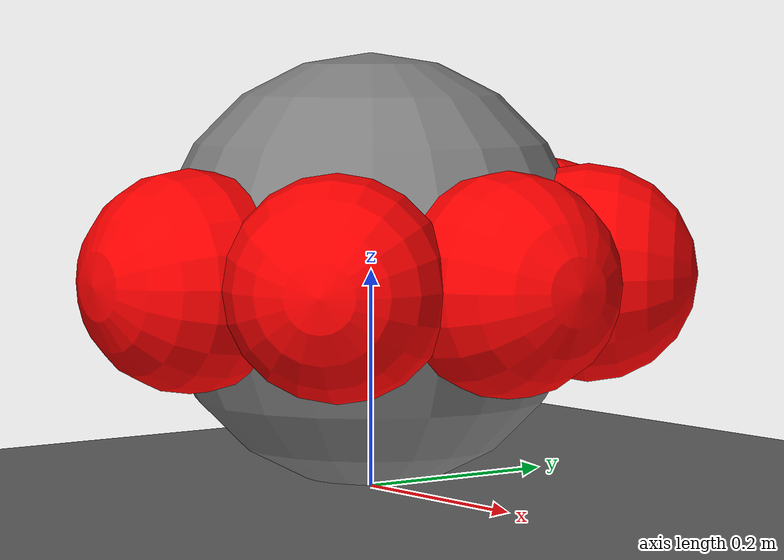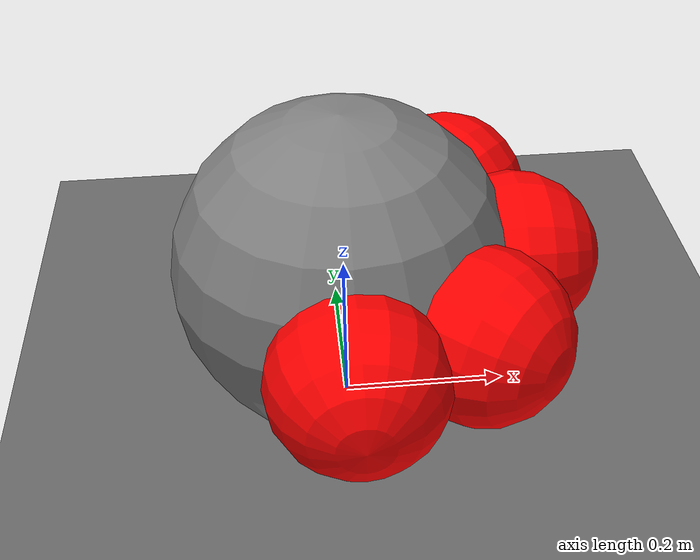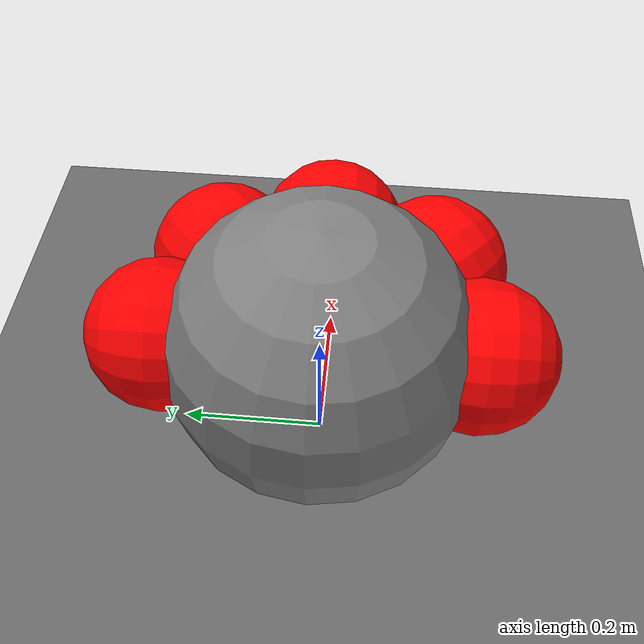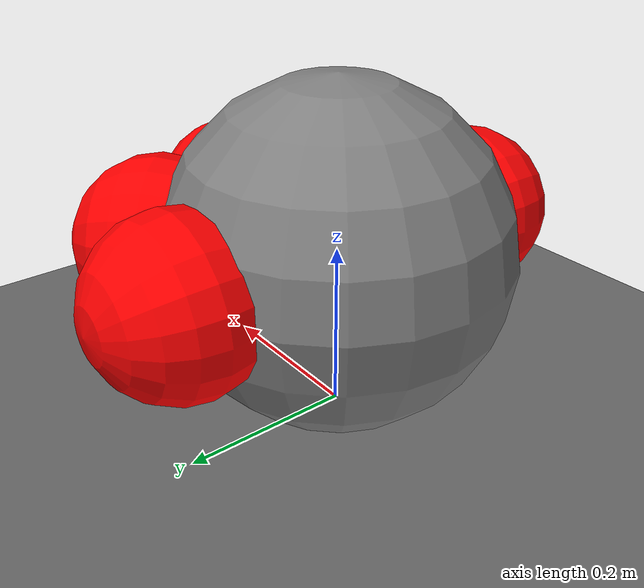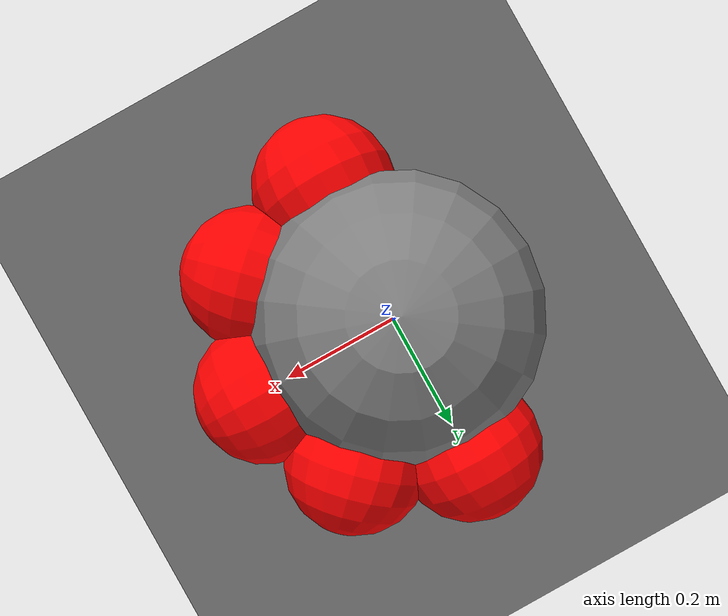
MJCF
<mujoco model="discrete_fish">
  <compiler angle="degree" coordinate="local" inertiafromgeom="true"/>
  <option timestep="0.01" iterations="4" />
  <custom>
    <!-- brax custom params -->
    <numeric data="0.0 0.0 0.0 " name="init_qpos"/>
    <numeric data="1000" name="constraint_limit_stiffness"/>
    <numeric data="4000" name="constraint_stiffness"/>
    <numeric data="10" name="constraint_ang_damping"/>
    <numeric data="20" name="constraint_vel_damping"/>
    <numeric data="0.5" name="joint_scale_pos"/>
    <numeric data="0.2" name="joint_scale_ang"/>
    <numeric data="0.0" name="ang_damping"/>
    <numeric data="1" name="spring_mass_scale"/>
    <numeric data="1" name="spring_inertia_scale"/>
    <numeric data="15" name="solver_maxls"/>
  </custom>
  <default>
    <joint armature="1" damping="1" limited="true"/>
    <geom contype="0" conaffinity="0" condim="3" density="5.0" friction="1 0.5 0.5"/>
  </default>
  <asset>
    <texture builtin="gradient" height="100" rgb1="1 1 1" rgb2="0 0 0" type="skybox" width="100"/>
    <texture builtin="flat" height="1278" mark="cross" markrgb="1 1 1" name="texgeom" random="0.01" rgb1="0.8 0.6 0.4" rgb2="0.8 0.6 0.4" type="cube" width="127"/>
    <texture builtin="checker" height="100" name="texplane" rgb1="0 0 0" rgb2="0.8 0.8 0.8" type="2d" width="100"/>
    <material name="MatPlane" reflectance="0.5" shininess="1" specular="1" texrepeat="60 60" texture="texplane"/>
    <material name="geom" texture="texgeom" texuniform="true"/>
  </asset>
  <worldbody>
    <light cutoff="100" diffuse="1 1 1" dir="-0 0 -1.3" directional="true" exponent="1" pos="0 0 1.3" specular=".1 .1 .1"/>
    <geom conaffinity="1" condim="3" material="MatPlane" name="floor" pos="0 0 0" size="4000 4000 40" type="plane"/>
    <body name="torso" pos="0 0 0.2">
      <geom name="torso_geom" size="0.2" type="sphere" contype="1" conaffinity="1"/>
      <joint axis="1 0 0"  name="move_joint_x" pos="0 0 0" range="-180 180" type="slide"/>
      <joint axis="0 1 0"  name="move_joint_y" pos="0 0 0" range="-180 180" type="slide"/>
      <joint axis="0 0 1"  name="rotate_joint" pos="0 0 0" range="-360 360" type="hinge"/>

      <!-- Sphere 1 (Wobbling behind the torso using a single hinge) -->

            <!-- Sphere 2 (Wobbling further behind the torso using a single hinge) -->
      <body name="sensor_0" pos="0.0 0.2 0" quat="0.4999999701976776 -0.5 0.5 0.5000000596046448" >
        <geom name="sensor_0_geom" size="0.1" type="sphere"  rgba="1 0 0 1"/> <!-- Blue color -->
      </body>

      <body name="sensor_1" pos="0.14142136 0.14142136 0" quat="0.6532814502716064 -0.27059805393218994 0.6532815098762512 0.27059808373451233">
        <geom name="sensor_1_geom" size="0.1" type="sphere"  rgba="1 0 0 1"/> <!-- Blue color -->
      </body>

         <body name="sensor_2" pos="0.2 -8.742278e-09 0" quat="0.7071067690849304 0.0 0.7071068286895752 0.0" >
        <geom name="sensor_2_geom" size="0.1" type="sphere"  rgba="1 0 0 1"/> <!-- Blue color -->
      </body>

      <body name="sensor_3" pos="0.14142136 -0.14142136 0" quat="0.6532814502716064 0.27059805393218994 0.6532815098762512 -0.27059808373451233" >
        <geom name="sensor_3_geom" size="0.1" type="sphere"  rgba="1 0 0 1"/> <!-- Blue color -->
      </body>

            <body name="sensor_4" pos="-1.7484556e-08 -0.2 0" quat="0.4999999701976776 0.5 0.5 -0.5000000596046448" >
        <geom name="sensor_4_geom" size="0.1" type="sphere"  rgba="1 0 0 1"/> <!-- Blue color -->
      </body>

    </body>
  </worldbody>
    <actuator>
    <motor ctrllimited="true" ctrlrange="0.0 1.0" joint="move_joint_x" gear="-10.0" forcelimited="true" forcerange="0.0 .1"/>
    <motor ctrllimited="true" ctrlrange="0.0 1.0" joint="move_joint_x" gear="10.0" forcelimited="true" forcerange="0.0 .1"/>
    <motor ctrllimited="true" ctrlrange="0.0 1.0" joint="move_joint_y" gear="10.0" forcelimited="true" forcerange="0.0 .1"/>
    <motor ctrllimited="true" ctrlrange="0.0 1.0" joint="move_joint_y" gear="-10.0" forcelimited="true" forcerange="0.0 .1"/>
  </actuator>

</mujoco>
